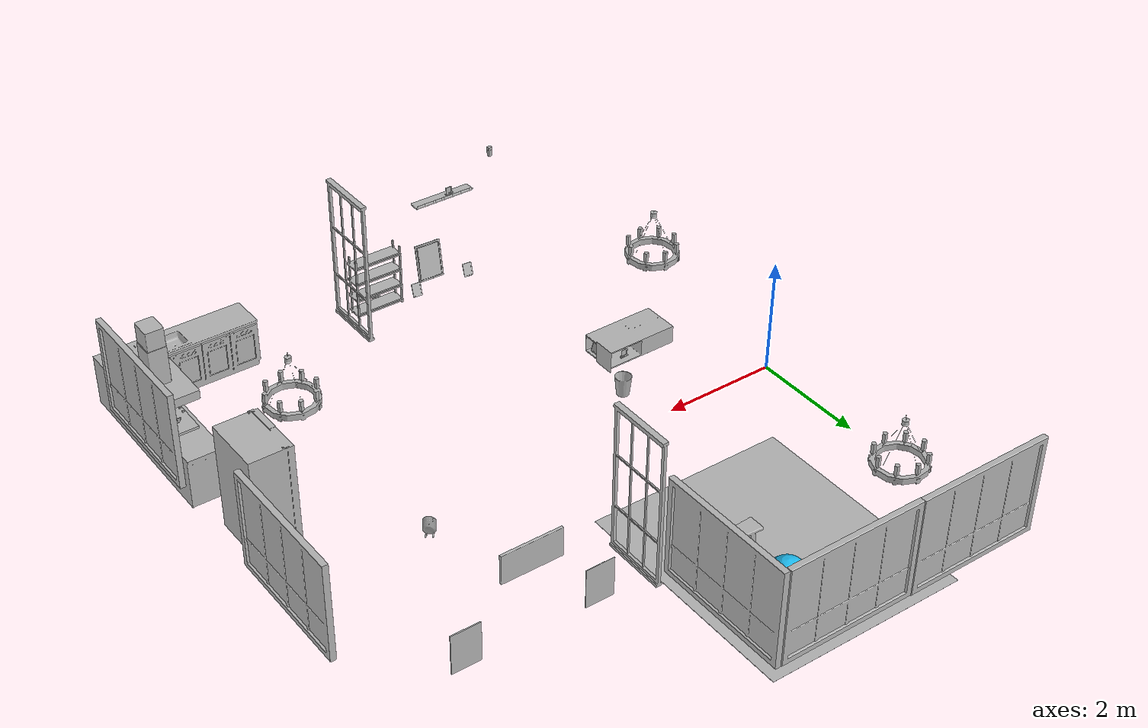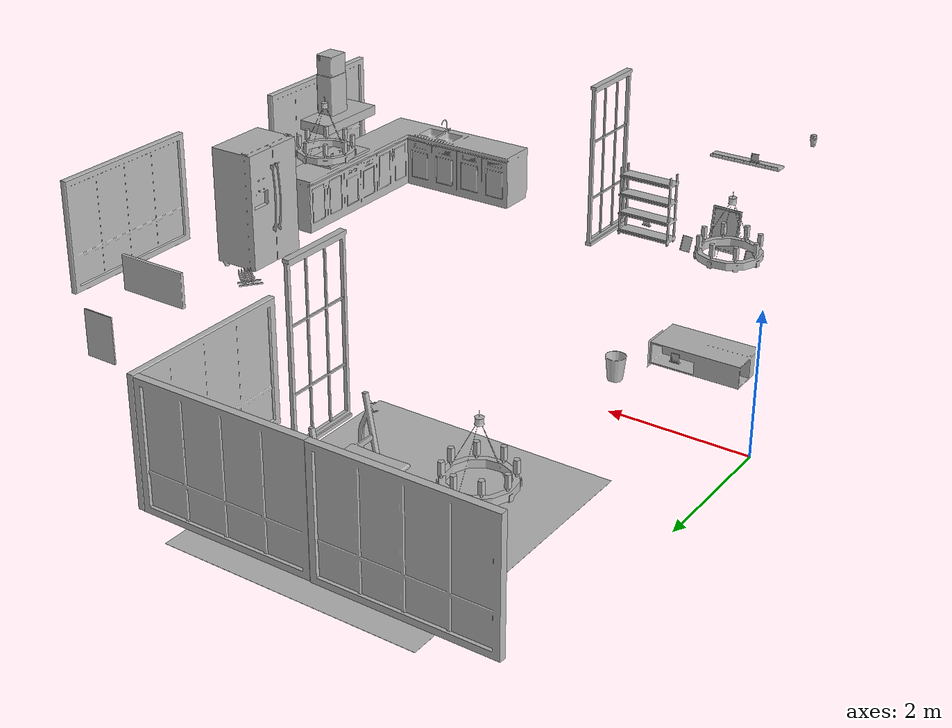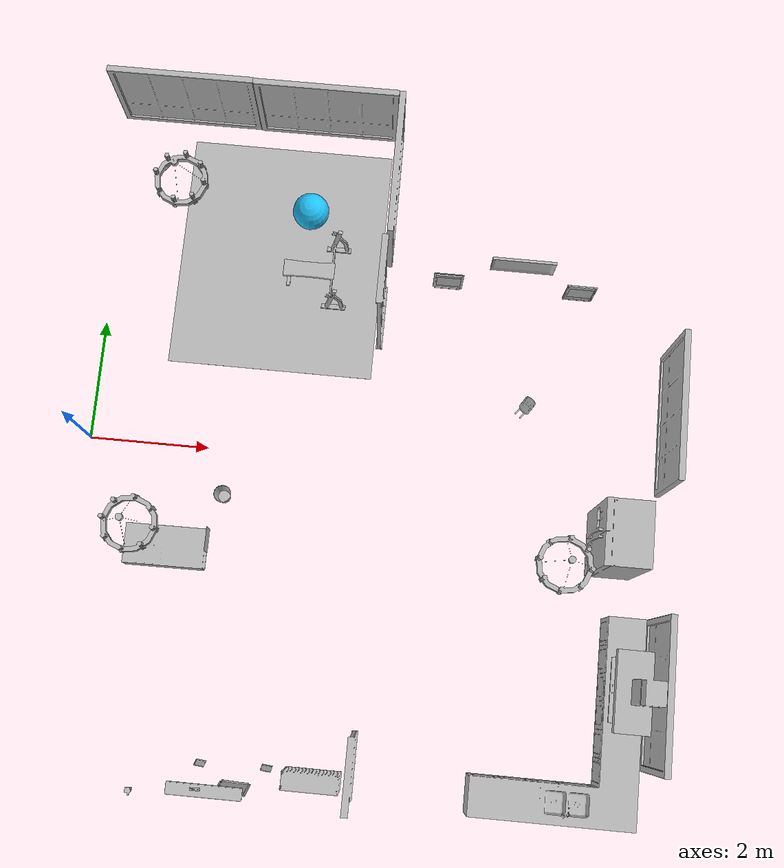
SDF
<sdf version="1.7">
 <world name="default">
  <model name="Ball_01_001">
   <static>1</static>
   <frame name="aws_robomaker_residential_Ball_01::__model__" attached_to="aws_robomaker_residential_Ball_01::link">
    <pose relative_to="__model__">0 0 0 0 -0 0</pose>
   </frame>
   <link name="aws_robomaker_residential_Ball_01::link">
    <inertial>
     <mass>0.12</mass>
     <inertia>
      <ixx>0.030752</ixx>
      <ixy>0</ixy>
      <ixz>0</ixz>
      <iyy>0.030752</iyy>
      <iyz>0</iyz>
      <izz>0.030752</izz>
     </inertia>
    </inertial>
    <collision name="collision">
     <geometry><sphere><radius>0.31</radius></sphere></geometry>
     <surface>
      <friction><ode><mu>0.85</mu><mu2>0.85</mu2></ode></friction>
      <contact><ode><kd>8500</kd><max_vel>5.1</max_vel></ode></contact>
     </surface>
    </collision>
    <visual name="visual">
     <geometry><sphere><radius>0.31</radius></sphere></geometry>
     <material><diffuse>0.12 0.76 0.97 1</diffuse><ambient>0.03 0.21 0.27 1</ambient></material>
     <meta><layer>1</layer></meta>
    </visual>
    <pose relative_to="aws_robomaker_residential_Ball_01::__model__">0 0 0 0 -0 0</pose>
   </link>
   <pose>3.2955 4.22567 0.318684 0 -0 0</pose>
  </model>
  <model name="Board_01_001">
   <static>1</static>
   <frame name="aws_robomaker_residential_Board_01::__model__" attached_to="aws_robomaker_residential_Board_01::link">
    <pose relative_to="__model__">0 0 0 0 -0 0</pose>
   </frame>
   <link name="aws_robomaker_residential_Board_01::link">
    <inertial><mass>1</mass></inertial>
    <collision name="collision">
     <geometry>
      <mesh>
       <uri>model://aws_robomaker_residential_Board_01/meshes/aws_Board_01_collision.DAE</uri>
       <scale>1 1 1</scale>
      </mesh>
     </geometry>
    </collision>
    <visual name="visual">
     <geometry>
      <mesh><uri>model://aws_robomaker_residential_Board_01/meshes/aws_Board_01_visual.DAE</uri></mesh>
     </geometry>
     <meta><layer>2</layer></meta>
    </visual>
    <pose relative_to="aws_robomaker_residential_Board_01::__model__">0 0 0 0 -0 0</pose>
   </link>
   <static>1</static>
   <pose>2.77907 -5.3927 1.53817 0 -0 0</pose>
  </model>
  <model name="Chandelier_01_001">
   <static>1</static>
   <frame name="aws_robomaker_residential_Chandelier_01::__model__" attached_to="aws_robomaker_residential_Chandelier_01::link">
    <pose relative_to="__model__">0 0 0 0 -0 0</pose>
   </frame>
   <link name="aws_robomaker_residential_Chandelier_01::link">
    <inertial><mass>1</mass></inertial>
    <collision name="collision">
     <geometry>
      <mesh>
       <uri>model://aws_robomaker_residential_Chandelier_01/meshes/aws_Chandelier_01_collision.DAE</uri>
       <scale>1 1 1</scale>
      </mesh>
     </geometry>
    </collision>
    <visual name="visual">
     <geometry>
      <mesh><uri>model://aws_robomaker_residential_Chandelier_01/meshes/aws_Chandelier_01_visual.DAE</uri></mesh>
     </geometry>
     <meta><layer>2</layer></meta>
    </visual>
    <pose relative_to="aws_robomaker_residential_Chandelier_01::__model__">0 0 0 0 -0 0</pose>
   </link>
   <static>1</static>
   <pose>1.22106 4.15574 1.295 0 -0 0</pose>
  </model>
  <model name="Chandelier_01_003">
   <static>1</static>
   <frame name="aws_robomaker_residential_Chandelier_01::__model__" attached_to="aws_robomaker_residential_Chandelier_01::link">
    <pose relative_to="__model__">0 0 0 0 -0 0</pose>
   </frame>
   <link name="aws_robomaker_residential_Chandelier_01::link">
    <inertial><mass>1</mass></inertial>
    <collision name="collision">
     <geometry>
      <mesh>
       <uri>model://aws_robomaker_residential_Chandelier_01/meshes/aws_Chandelier_01_collision.DAE</uri>
       <scale>1 1 1</scale>
      </mesh>
     </geometry>
    </collision>
    <visual name="visual">
     <geometry>
      <mesh><uri>model://aws_robomaker_residential_Chandelier_01/meshes/aws_Chandelier_01_visual.DAE</uri></mesh>
     </geometry>
     <meta><layer>2</layer></meta>
    </visual>
    <pose relative_to="aws_robomaker_residential_Chandelier_01::__model__">0 0 0 0 -0 0</pose>
   </link>
   <static>1</static>
   <pose>7.82406 -1.59 1.751 0 -0 0</pose>
  </model>
  <model name="Chandelier_01_004">
   <static>1</static>
   <frame name="aws_robomaker_residential_Chandelier_01::__model__" attached_to="aws_robomaker_residential_Chandelier_01::link">
    <pose relative_to="__model__">0 0 0 0 -0 0</pose>
   </frame>
   <link name="aws_robomaker_residential_Chandelier_01::link">
    <inertial><mass>1</mass></inertial>
    <collision name="collision">
     <geometry>
      <mesh>
       <uri>model://aws_robomaker_residential_Chandelier_01/meshes/aws_Chandelier_01_collision.DAE</uri>
       <scale>1 1 1</scale>
      </mesh>
     </geometry>
    </collision>
    <visual name="visual">
     <geometry>
      <mesh><uri>model://aws_robomaker_residential_Chandelier_01/meshes/aws_Chandelier_01_visual.DAE</uri></mesh>
     </geometry>
     <meta><layer>2</layer></meta>
    </visual>
    <pose relative_to="aws_robomaker_residential_Chandelier_01::__model__">0 0 0 0 -0 0</pose>
   </link>
   <static>1</static>
   <pose>1.22106 -1.59204 1.7873 0 -0 0</pose>
  </model>
  <model name="Carpet_01_002">
   <static>1</static>
   <frame name="aws_robomaker_residential_Carpet_01::__model__" attached_to="aws_robomaker_residential_Carpet_01::link">
    <pose relative_to="__model__">0 0 0 0 -0 0</pose>
   </frame>
   <link name="aws_robomaker_residential_Carpet_01::link">
    <inertial><mass>8.1</mass></inertial>
    <collision name="collision">
     <geometry>
      <mesh>
       <uri>model://aws_robomaker_residential_Carpet_01/meshes/aws_Carpet_01_collision.DAE</uri>
       <scale>1 1 0.95</scale>
      </mesh>
     </geometry>
     <surface><friction><ode><mu>100</mu><mu2>50</mu2></ode></friction></surface>
     <pose>0 0 -0.01 0 -0 0</pose>
    </collision>
    <visual name="visual">
     <geometry>
      <mesh><uri>model://aws_robomaker_residential_Carpet_01/meshes/aws_Carpet_01_visual.DAE</uri></mesh>
     </geometry>
     <meta><layer>1</layer></meta>
    </visual>
    <pose relative_to="aws_robomaker_residential_Carpet_01::__model__">0 0 0 0 -0 0</pose>
   </link>
   <static>1</static>
   <pose>2.85405 3.45 0.000585 0 -0 0</pose>
  </model>
  <model name="CoffeeTable_01_001">
   <static>1</static>
   <frame name="aws_robomaker_residential_CoffeeTable_01::__model__" attached_to="aws_robomaker_residential_CoffeeTable_01::link">
    <pose relative_to="__model__">0 0 0 0 -0 0</pose>
   </frame>
   <link name="aws_robomaker_residential_CoffeeTable_01::link">
    <inertial>
     <mass>21.7</mass>
     <inertia><ixx>0.81375</ixx><ixy>0</ixy><ixz>0</ixz><iyy>2.76675</iyy><iyz>0</iyz><izz>3.254</izz></inertia>
    </inertial>
    <collision name="collision">
     <geometry>
      <mesh>
       <uri>model://aws_robomaker_residential_CoffeeTable_01/meshes/aws_CoffeeTable_01_collision.DAE</uri>
       <scale>1 1 1</scale>
      </mesh>
     </geometry>
     <surface><contact><ode><max_vel>0.01</max_vel></ode></contact></surface>
    </collision>
    <visual name="visual">
     <geometry>
      <mesh><uri>model://aws_robomaker_residential_CoffeeTable_01/meshes/aws_CoffeeTable_01_visual.DAE</uri></mesh>
     </geometry>
     <meta><layer>1</layer></meta>
    </visual>
    <pose relative_to="aws_robomaker_residential_CoffeeTable_01::__model__">0 0 0 0 -0 0</pose>
   </link>
   <static>1</static>
   <pose>1.5123 -1.73344 0.041983 0 -0 0.01</pose>
  </model>
  <model name="CookingBench_01_001">
   <frame name="aws_robomaker_residential_CookingBench_01::__model__" attached_to="aws_robomaker_residential_CookingBench_01::link">
    <pose relative_to="__model__">0 0 0 0 -0 0</pose>
   </frame>
   <link name="aws_robomaker_residential_CookingBench_01::link">
    <inertial><mass>1</mass></inertial>
    <collision name="collision">
     <geometry>
      <mesh>
       <uri>model://aws_robomaker_residential_CookingBench_01/meshes/aws_CookingBench_01_collision.DAE</uri>
       <scale>1 1 1</scale>
      </mesh>
     </geometry>
    </collision>
    <visual name="visual">
     <geometry>
      <mesh>
       <uri>model://aws_robomaker_residential_CookingBench_01/meshes/aws_CookingBench_01_visual.DAE</uri>
      </mesh>
     </geometry>
     <meta><layer>1</layer></meta>
    </visual>
    <pose relative_to="aws_robomaker_residential_CookingBench_01::__model__">0 0 0 0 -0 0</pose>
   </link>
   <pose>9.03838 -3.35114 0.90361 0 -0 3.13713</pose>
   <static>1</static>
  </model>
  <model name="FitnessEquipment_01_001">
   <static>1</static>
   <frame name="aws_robomaker_residential_FitnessEquipment_01::__model__" attached_to="aws_robomaker_residential_FitnessEquipment_01::link">
    <pose relative_to="__model__">0 0 0 0 -0 0</pose>
   </frame>
   <link name="aws_robomaker_residential_FitnessEquipment_01::link">
    <inertial><mass>80</mass></inertial>
    <collision name="collision">
     <geometry>
      <mesh>
       <uri>model://aws_robomaker_residential_FitnessEquipment_01/meshes/aws_FitnessEquipment_01_collision.DAE</uri>
       <scale>1 1 1</scale>
      </mesh>
     </geometry>
    </collision>
    <visual name="visual">
     <geometry>
      <mesh>
       <uri>model://aws_robomaker_residential_FitnessEquipment_01/meshes/aws_FitnessEquipment_01_visual.DAE</uri>
      </mesh>
     </geometry>
     <meta><layer>1</layer></meta>
    </visual>
    <pose relative_to="aws_robomaker_residential_FitnessEquipment_01::__model__">0 0 0 0 -0 0</pose>
   </link>
   <static>1</static>
   <pose>3.48472 3.1691 0.003168 0 -0 0</pose>
  </model>
  <model name="FoldingDoor_02_001">
   <static>1</static>
   <frame name="aws_robomaker_residential_FoldingDoor_02::__model__" attached_to="aws_robomaker_residential_FoldingDoor_02::link">
    <pose relative_to="__model__">0 0 0 0 -0 0</pose>
   </frame>
   <link name="aws_robomaker_residential_FoldingDoor_02::link">
    <inertial><mass>1</mass></inertial>
    <collision name="collision">
     <geometry>
      <mesh>
       <uri>model://aws_robomaker_residential_FoldingDoor_02/meshes/aws_FoldingDoor_02_collision.DAE</uri>
       <scale>1 1 1</scale>
      </mesh>
     </geometry>
    </collision>
    <visual name="visual">
     <geometry>
      <mesh><uri>model://aws_robomaker_residential_FoldingDoor_02/meshes/aws_FoldingDoor_02_visual.DAE</uri></mesh>
     </geometry>
     <meta><layer>2</layer></meta>
    </visual>
    <pose relative_to="aws_robomaker_residential_FoldingDoor_02::__model__">0 0 0 0 -0 0</pose>
   </link>
   <static>1</static>
   <pose>4.67423 2.46451 0 0 -0 3.14159</pose>
  </model>
  <model name="FoldingDoor_02_002">
   <static>1</static>
   <frame name="aws_robomaker_residential_FoldingDoor_02::__model__" attached_to="aws_robomaker_residential_FoldingDoor_02::link">
    <pose relative_to="__model__">0 0 0 0 -0 0</pose>
   </frame>
   <link name="aws_robomaker_residential_FoldingDoor_02::link">
    <inertial><mass>1</mass></inertial>
    <collision name="collision">
     <geometry>
      <mesh>
       <uri>model://aws_robomaker_residential_FoldingDoor_02/meshes/aws_FoldingDoor_02_collision.DAE</uri>
       <scale>1 1 1</scale>
      </mesh>
     </geometry>
    </collision>
    <visual name="visual">
     <geometry>
      <mesh><uri>model://aws_robomaker_residential_FoldingDoor_02/meshes/aws_FoldingDoor_02_visual.DAE</uri></mesh>
     </geometry>
     <meta><layer>2</layer></meta>
    </visual>
    <pose relative_to="aws_robomaker_residential_FoldingDoor_02::__model__">0 0 0 0 -0 0</pose>
   </link>
   <static>1</static>
   <pose>4.8912 -4.84968 0 0 -0 0</pose>
  </model>
  <model name="KitchenCabinet_01_001">
   <static>1</static>
   <frame name="aws_robomaker_residential_KitchenCabinet_01::__model__" attached_to="aws_robomaker_residential_KitchenCabinet_01::link">
    <pose relative_to="__model__">0 0 0 0 -0 0</pose>
   </frame>
   <link name="aws_robomaker_residential_KitchenCabinet_01::link">
    <inertial><mass>1</mass></inertial>
    <collision name="collision">
     <geometry>
      <mesh>
       <uri>model://aws_robomaker_residential_KitchenCabinet_01/meshes/aws_KitchenCabinet_01_collision.DAE</uri>
       <scale>1 1 1</scale>
      </mesh>
     </geometry>
    </collision>
    <visual name="visual">
     <geometry>
      <mesh>
       <uri>model://aws_robomaker_residential_KitchenCabinet_01/meshes/aws_KitchenCabinet_01_visual.DAE</uri>
      </mesh>
     </geometry>
     <meta><layer>1</layer></meta>
    </visual>
    <pose relative_to="aws_robomaker_residential_KitchenCabinet_01::__model__">0 0 0 0 -0 0</pose>
   </link>
   <static>1</static>
   <pose>8.00201 -3.83651 0.012068 0 0 -3.14</pose>
  </model>
  <model name="LightC_01_001">
   <static>1</static>
   <frame name="aws_robomaker_residential_LightC_01::__model__" attached_to="aws_robomaker_residential_LightC_01::link">
    <pose relative_to="__model__">0 0 0 0 -0 0</pose>
   </frame>
   <link name="aws_robomaker_residential_LightC_01::link">
    <inertial><mass>1</mass></inertial>
    <collision name="collision">
     <geometry>
      <mesh>
       <uri>model://aws_robomaker_residential_LightC_01/meshes/aws_LightC_01_collision.DAE</uri>
       <scale>1 1 1</scale>
      </mesh>
     </geometry>
    </collision>
    <visual name="visual">
     <geometry>
      <mesh><uri>model://aws_robomaker_residential_LightC_01/meshes/aws_LightC_01_visual.DAE</uri></mesh>
     </geometry>
     <meta><layer>2</layer></meta>
    </visual>
    <pose relative_to="aws_robomaker_residential_LightC_01::__model__">0 0 0 0 -0 0</pose>
   </link>
   <static>1</static>
   <pose>1.76957 -5.44437 2 0 -0 0</pose>
  </model>
  <model name="PortraitB_02">
   <static>1</static>
   <frame name="aws_robomaker_residential_PortraitB_02::__model__" attached_to="aws_robomaker_residential_PortraitB_02::link">
    <pose relative_to="__model__">0 0 0 0 -0 0</pose>
   </frame>
   <link name="aws_robomaker_residential_PortraitB_02::link">
    <inertial><mass>1</mass></inertial>
    <collision name="collision">
     <geometry>
      <mesh>
       <uri>model://aws_robomaker_residential_PortraitB_02/meshes/aws_PortraitB_01_collision.DAE</uri>
       <scale>1 1 1</scale>
      </mesh>
     </geometry>
    </collision>
    <visual name="visual">
     <geometry>
      <mesh><uri>model://aws_robomaker_residential_PortraitB_02/meshes/aws_PortraitB_01_visual.DAE</uri></mesh>
     </geometry>
     <meta><layer>2</layer></meta>
    </visual>
    <pose relative_to="aws_robomaker_residential_PortraitB_02::__model__">0 0 0 0 -0 0</pose>
   </link>
   <static>1</static>
   <pose>5.73702 3.08031 0.3 0 -0 0</pose>
  </model>
  <model name="PortraitB_03">
   <static>1</static>
   <frame name="aws_robomaker_residential_PortraitB_03::__model__" attached_to="aws_robomaker_residential_PortraitB_03::link">
    <pose relative_to="__model__">0 0 0 0 -0 0</pose>
   </frame>
   <link name="aws_robomaker_residential_PortraitB_03::link">
    <inertial><mass>1</mass></inertial>
    <collision name="collision">
     <geometry>
      <mesh>
       <uri>model://aws_robomaker_residential_PortraitB_03/meshes/aws_PortraitB_01_collision.DAE</uri>
       <scale>1 1 1</scale>
      </mesh>
     </geometry>
    </collision>
    <visual name="visual">
     <geometry>
      <mesh><uri>model://aws_robomaker_residential_PortraitB_03/meshes/aws_PortraitB_01_visual.DAE</uri></mesh>
     </geometry>
     <meta><layer>2</layer></meta>
    </visual>
    <pose relative_to="aws_robomaker_residential_PortraitB_03::__model__">0 0 0 0 -0 0</pose>
   </link>
   <static>1</static>
   <pose>3.07138 -5.34937 0.005494 -0.168428 -0 3.10423</pose>
  </model>
  <model name="PortraitA_02">
   <static>1</static>
   <frame name="aws_robomaker_residential_PortraitA_02::__model__" attached_to="aws_robomaker_residential_PortraitA_02::link">
    <pose relative_to="__model__">0 0 0 0 -0 0</pose>
   </frame>
   <link name="aws_robomaker_residential_PortraitA_02::link">
    <inertial><mass>1</mass></inertial>
    <collision name="collision">
     <geometry>
      <mesh>
       <uri>model://aws_robomaker_residential_PortraitA_02/meshes/aws_PortraitA_01_collision.DAE</uri>
       <scale>1 1 1</scale>
      </mesh>
     </geometry>
    </collision>
    <visual name="visual">
     <geometry>
      <mesh><uri>model://aws_robomaker_residential_PortraitA_02/meshes/aws_PortraitA_01_visual.DAE</uri></mesh>
     </geometry>
     <meta><layer>2</layer></meta>
    </visual>
    <pose relative_to="aws_robomaker_residential_PortraitA_02::__model__">0 0 0 0 -0 0</pose>
   </link>
   <static>1</static>
   <pose>7.93702 3.08031 0.3 0 -0 3.14</pose>
  </model>
  <model name="PortraitD_02">
   <static>1</static>
   <frame name="aws_robomaker_residential_PortraitD_02::__model__" attached_to="aws_robomaker_residential_PortraitD_02::link">
    <pose relative_to="__model__">0 0 0 0 -0 0</pose>
   </frame>
   <link name="aws_robomaker_residential_PortraitD_02::link">
    <inertial><mass>1.5</mass></inertial>
    <collision name="collision">
     <geometry>
      <mesh>
       <uri>model://aws_robomaker_residential_PortraitD_02/meshes/aws_PortraitD_01_collision.DAE</uri>
       <scale>1 1 1</scale>
      </mesh>
     </geometry>
    </collision>
    <visual name="visual">
     <geometry>
      <mesh><uri>model://aws_robomaker_residential_PortraitD_02/meshes/aws_PortraitD_01_visual.DAE</uri></mesh>
     </geometry>
     <meta><layer>2</layer></meta>
    </visual>
    <pose relative_to="aws_robomaker_residential_PortraitD_02::__model__">0 0 0 0 -0 0</pose>
   </link>
   <static>1</static>
   <pose>6.87018 3.08031 1.48844 0 -0 0</pose>
  </model>
  <model name="DeskPortraitA_02">
   <static>1</static>
   <frame name="aws_robomaker_residential_DeskPortraitA_02::__model__" attached_to="aws_robomaker_residential_DeskPortraitA_02::link">
    <pose relative_to="__model__">0 0 0 0 -0 0</pose>
   </frame>
   <link name="aws_robomaker_residential_DeskPortraitA_02::link">
    <inertial>
     <mass>1</mass>
     <inertia><ixx>0.0835</ixx><ixy>0</ixy><ixz>0</ixz><iyy>0.16</iyy><iyz>0</iyz><izz>0.08347</izz></inertia>
    </inertial>
    <collision name="collision">
     <geometry>
      <mesh>
       <uri>model://aws_robomaker_residential_DeskPortraitA_02/meshes/aws_DeskPortraitA_01_collision.DAE</uri>
       <scale>1 1 1</scale>
      </mesh>
     </geometry>
    </collision>
    <visual name="visual">
     <geometry>
      <mesh>
       <uri>model://aws_robomaker_residential_DeskPortraitA_02/meshes/aws_DeskPortraitA_01_visual.DAE</uri>
      </mesh>
     </geometry>
     <meta><layer>1</layer></meta>
    </visual>
    <pose relative_to="aws_robomaker_residential_DeskPortraitA_02::__model__">0 0 0 0 -0 0</pose>
   </link>
   <pose>2.04608 -1.89293 0.070388 -0.018328 -0.000441 1.57622</pose>
  </model>
  <model name="DeskPortraitD_01">
   <static>1</static>
   <frame name="aws_robomaker_residential_DeskPortraitD_01::__model__" attached_to="aws_robomaker_residential_DeskPortraitD_01::link">
    <pose relative_to="__model__">0 0 0 0 -0 0</pose>
   </frame>
   <link name="aws_robomaker_residential_DeskPortraitD_01::link">
    <inertial>
     <mass>0.4</mass>
     <inertia><ixx>0.0616</ixx><ixy>0</ixy><ixz>0</ixz><iyy>0.1313</iyy><iyz>0</iyz><izz>0.0803</izz></inertia>
    </inertial>
    <collision name="collision">
     <geometry>
      <mesh>
       <uri>model://aws_robomaker_residential_DeskPortraitD_01/meshes/aws_DeskPortraitD_01_collision.DAE</uri>
       <scale>1 1 1</scale>
      </mesh>
     </geometry>
     <surface>
      <friction><ode><mu>0.7</mu><mu2>0.7</mu2></ode></friction>
      <contact><ode><kd>28500</kd></ode></contact>
     </surface>
    </collision>
    <visual name="visual">
     <geometry>
      <mesh>
       <uri>model://aws_robomaker_residential_DeskPortraitD_01/meshes/aws_DeskPortraitD_01_visual.DAE</uri>
      </mesh>
     </geometry>
     <meta><layer>1</layer></meta>
    </visual>
    <pose relative_to="aws_robomaker_residential_DeskPortraitD_01::__model__">0 0 0 0 -0 0</pose>
   </link>
   <pose>2.64556 -5.37622 1.57374 0 0 -3.11283</pose>
  </model>
  <model name="DeskPortraitD_03">
   <static>1</static>
   <frame name="aws_robomaker_residential_DeskPortraitD_03::__model__" attached_to="aws_robomaker_residential_DeskPortraitD_03::link">
    <pose relative_to="__model__">0 0 0 0 -0 0</pose>
   </frame>
   <link name="aws_robomaker_residential_DeskPortraitD_03::link">
    <inertial>
     <mass>0.4</mass>
     <inertia><ixx>0.0616</ixx><ixy>0</ixy><ixz>0</ixz><iyy>0.1313</iyy><iyz>0</iyz><izz>0.0803</izz></inertia>
    </inertial>
    <collision name="collision">
     <geometry>
      <mesh>
       <uri>model://aws_robomaker_residential_DeskPortraitD_03/meshes/aws_DeskPortraitD_01_collision.DAE</uri>
       <scale>1 1 1</scale>
      </mesh>
     </geometry>
     <surface>
      <friction><ode><mu>0.7</mu><mu2>0.7</mu2></ode></friction>
      <contact><ode><kd>28500</kd></ode></contact>
     </surface>
    </collision>
    <visual name="visual">
     <geometry>
      <mesh>
       <uri>model://aws_robomaker_residential_DeskPortraitD_03/meshes/aws_DeskPortraitD_01_visual.DAE</uri>
      </mesh>
     </geometry>
     <meta><layer>1</layer></meta>
    </visual>
    <pose relative_to="aws_robomaker_residential_DeskPortraitD_03::__model__">0 0 0 0 -0 0</pose>
   </link>
   <pose>1.82673 -1.46488 0.126208 1e-05 6e-06 -3.11438</pose>
  </model>
  <model name="DeskPortraitD_04">
   <static>1</static>
   <frame name="aws_robomaker_residential_DeskPortraitD_04::__model__" attached_to="aws_robomaker_residential_DeskPortraitD_04::link">
    <pose relative_to="__model__">0 0 0 0 -0 0</pose>
   </frame>
   <link name="aws_robomaker_residential_DeskPortraitD_04::link">
    <inertial>
     <mass>0.4</mass>
     <inertia><ixx>0.0616</ixx><ixy>0</ixy><ixz>0</ixz><iyy>0.1313</iyy><iyz>0</iyz><izz>0.0803</izz></inertia>
    </inertial>
    <collision name="collision">
     <geometry>
      <mesh>
       <uri>model://aws_robomaker_residential_DeskPortraitD_04/meshes/aws_DeskPortraitD_01_collision.DAE</uri>
       <scale>1 1 1</scale>
      </mesh>
     </geometry>
     <surface>
      <friction><ode><mu>0.7</mu><mu2>0.7</mu2></ode></friction>
      <contact><ode><kd>28500</kd></ode></contact>
     </surface>
    </collision>
    <visual name="visual">
     <geometry>
      <mesh>
       <uri>model://aws_robomaker_residential_DeskPortraitD_04/meshes/aws_DeskPortraitD_01_visual.DAE</uri>
      </mesh>
     </geometry>
     <meta><layer>1</layer></meta>
    </visual>
    <pose relative_to="aws_robomaker_residential_DeskPortraitD_04::__model__">0 0 0 0 -0 0</pose>
   </link>
   <pose>4.30213 -5.17657 0.202496 0.007118 -1e-06 3.04668</pose>
  </model>
  <model name="DeskPortraitB_01">
   <static>1</static>
   <frame name="aws_robomaker_residential_DeskPortraitB_01::__model__" attached_to="aws_robomaker_residential_DeskPortraitB_01::link">
    <pose relative_to="__model__">0 0 0 0 -0 0</pose>
   </frame>
   <link name="aws_robomaker_residential_DeskPortraitB_01::link">
    <inertial>
     <mass>1</mass>
     <inertia><ixx>0.0135</ixx><ixy>0</ixy><ixz>0</ixz><iyy>0.02</iyy><iyz>0</iyz><izz>0.01347</izz></inertia>
    </inertial>
    <collision name="collision">
     <geometry>
      <mesh>
       <uri>model://aws_robomaker_residential_DeskPortraitB_01/meshes/aws_DeskPortraitB_01_collision.DAE</uri>
       <scale>1 1 1</scale>
      </mesh>
     </geometry>
    </collision>
    <visual name="visual">
     <geometry>
      <mesh>
       <uri>model://aws_robomaker_residential_DeskPortraitB_01/meshes/aws_DeskPortraitB_01_visual.DAE</uri>
      </mesh>
     </geometry>
     <meta><layer>1</layer></meta>
    </visual>
    <pose relative_to="aws_robomaker_residential_DeskPortraitB_01::__model__">0 0 0 0 -0 0</pose>
   </link>
   <pose>3.54738 -5.0839 -0.01266 -0.336622 -1e-06 3.04674</pose>
  </model>
  <model name="DeskPortraitB_02">
   <static>1</static>
   <frame name="aws_robomaker_residential_DeskPortraitB_02::__model__" attached_to="aws_robomaker_residential_DeskPortraitB_02::link">
    <pose relative_to="__model__">0 0 0 0 -0 0</pose>
   </frame>
   <link name="aws_robomaker_residential_DeskPortraitB_02::link">
    <inertial>
     <mass>1</mass>
     <inertia><ixx>0.0135</ixx><ixy>0</ixy><ixz>0</ixz><iyy>0.02</iyy><iyz>0</iyz><izz>0.01347</izz></inertia>
    </inertial>
    <collision name="collision">
     <geometry>
      <mesh>
       <uri>model://aws_robomaker_residential_DeskPortraitB_02/meshes/aws_DeskPortraitB_01_collision.DAE</uri>
       <scale>1 1 1</scale>
      </mesh>
     </geometry>
    </collision>
    <visual name="visual">
     <geometry>
      <mesh>
       <uri>model://aws_robomaker_residential_DeskPortraitB_02/meshes/aws_DeskPortraitB_01_visual.DAE</uri>
      </mesh>
     </geometry>
     <meta><layer>1</layer></meta>
    </visual>
    <pose relative_to="aws_robomaker_residential_DeskPortraitB_02::__model__">0 0 0 0 -0 0</pose>
   </link>
   <pose>2.48627 -5.10252 -0.01266 -0.336621 0 3.0468</pose>
  </model>
  <model name="Rangehood_01_001">
   <static>1</static>
   <frame name="aws_robomaker_residential_Rangehood_01::__model__" attached_to="aws_robomaker_residential_Rangehood_01::link">
    <pose relative_to="__model__">0 0 0 0 -0 0</pose>
   </frame>
   <link name="aws_robomaker_residential_Rangehood_01::link">
    <inertial><mass>1</mass></inertial>
    <collision name="collision">
     <geometry>
      <mesh>
       <uri>model://aws_robomaker_residential_Rangehood_01/meshes/aws_Rangehood_01_collision.DAE</uri>
       <scale>1 1 1</scale>
      </mesh>
     </geometry>
    </collision>
    <visual name="visual">
     <geometry>
      <mesh><uri>model://aws_robomaker_residential_Rangehood_01/meshes/aws_Rangehood_01_visual.DAE</uri></mesh>
     </geometry>
     <meta><layer>2</layer></meta>
    </visual>
    <pose relative_to="aws_robomaker_residential_Rangehood_01::__model__">0 0 0 0 -0 0</pose>
   </link>
   <static>1</static>
   <pose>9.01979 -3.36994 1.50761 0 -0 0</pose>
  </model>
  <model name="Refrigerator_01_001">
   <static>1</static>
   <frame name="aws_robomaker_residential_Refrigerator_01::__model__" attached_to="aws_robomaker_residential_Refrigerator_01::link">
    <pose relative_to="__model__">0 0 0 0 -0 0</pose>
   </frame>
   <link name="aws_robomaker_residential_Refrigerator_01::link">
    <inertial><mass>1</mass></inertial>
    <collision name="collision">
     <geometry>
      <mesh>
       <uri>model://aws_robomaker_residential_Refrigerator_01/meshes/aws_Refrigerator_01_collision.DAE</uri>
       <scale>1 1 1</scale>
      </mesh>
     </geometry>
    </collision>
    <visual name="visual">
     <geometry>
      <mesh>
       <uri>model://aws_robomaker_residential_Refrigerator_01/meshes/aws_Refrigerator_01_visual.DAE</uri>
      </mesh>
     </geometry>
     <meta><layer>1</layer></meta>
    </visual>
    <pose relative_to="aws_robomaker_residential_Refrigerator_01::__model__">0 0 0 0 -0 0</pose>
   </link>
   <static>1</static>
   <pose>8.70273 -1.03203 0 0 0 -1.5635</pose>
  </model>
  <model name="ShoeRack_01_001">
   <static>1</static>
   <frame name="aws_robomaker_residential_ShoeRack_01::__model__" attached_to="aws_robomaker_residential_ShoeRack_01::link">
    <pose relative_to="__model__">0 0 0 0 -0 0</pose>
   </frame>
   <link name="aws_robomaker_residential_ShoeRack_01::link">
    <inertial>
     <mass>6</mass>
     <inertia>
      <ixx>0.02</ixx>
      <ixy>0</ixy>
      <ixz>0</ixz>
      <iyy>0.04</iyy>
      <iyz>0</iyz>
      <ixx>0.02</ixx>
      <izz>1</izz>
     </inertia>
    </inertial>
    <collision name="collision">
     <geometry>
      <mesh>
       <uri>model://aws_robomaker_residential_ShoeRack_01/meshes/aws_ShoeRack_01_collision.DAE</uri>
       <scale>1 1 1</scale>
      </mesh>
     </geometry>
     <surface>
      <friction><ode><mu>0.2</mu><mu2>0.2</mu2></ode></friction>
      <contact><ode><kd>2500</kd></ode></contact>
     </surface>
    </collision>
    <visual name="visual">
     <geometry>
      <mesh><uri>model://aws_robomaker_residential_ShoeRack_01/meshes/aws_ShoeRack_01_visual.DAE</uri></mesh>
     </geometry>
     <meta><layer>1</layer></meta>
    </visual>
    <pose relative_to="aws_robomaker_residential_ShoeRack_01::__model__">0 0 0 0 -0 0</pose>
   </link>
   <pose>4.29798 -5.17357 0 0 -0 0</pose>
  </model>
  <model name="Tableware_01_001">
   <static>1</static>
   <frame name="aws_robomaker_residential_Tableware_01::__model__" attached_to="aws_robomaker_residential_Tableware_01::link">
    <pose relative_to="__model__">0 0 0 0 -0 0</pose>
   </frame>
   <link name="aws_robomaker_residential_Tableware_01::link">
    <inertial><mass>1</mass></inertial>
    <collision name="collision">
     <geometry>
      <mesh>
       <uri>model://aws_robomaker_residential_Tableware_01/meshes/aws_Tableware_01_collision.DAE</uri>
       <scale>1 1 1</scale>
      </mesh>
     </geometry>
    </collision>
    <visual name="visual">
     <geometry>
      <mesh><uri>model://aws_robomaker_residential_Tableware_01/meshes/aws_Tableware_01_visual.DAE</uri></mesh>
     </geometry>
     <meta><layer>1</layer></meta>
    </visual>
    <pose relative_to="aws_robomaker_residential_Tableware_01::__model__">0 0 0 0 -0 0</pose>
   </link>
   <pose>7.15317 0.982767 0.817812 -0.001238 -0.000976 1.02476</pose>
  </model>
  <model name="Trash_01_001">
   <static>1</static>
   <frame name="aws_robomaker_residential_Trash_01::__model__" attached_to="aws_robomaker_residential_Trash_01::link">
    <pose relative_to="__model__">0 0 0 0 -0 0</pose>
   </frame>
   <link name="aws_robomaker_residential_Trash_01::link">
    <inertial>
     <mass>0.1</mass>
     <inertia><ixy>0</ixy><ixz>0</ixz><iyz>0</iyz><ixx>0.05288</ixx><iyy>0.05288</iyy><izz>0.09132</izz></inertia>
    </inertial>
    <collision name="collision">
     <geometry>
      <mesh>
       <uri>model://aws_robomaker_residential_Trash_01/meshes/aws_Trash_01_collision.DAE</uri>
       <scale>1 1 1</scale>
      </mesh>
     </geometry>
    </collision>
    <visual name="visual">
     <geometry>
      <mesh><uri>model://aws_robomaker_residential_Trash_01/meshes/aws_Trash_01_visual.DAE</uri></mesh>
     </geometry>
     <meta><layer>1</layer></meta>
    </visual>
    <pose relative_to="aws_robomaker_residential_Trash_01::__model__">0 0 0 0 -0 0</pose>
   </link>
   <pose>2.36015 -0.796238 0.011 0 -0 0</pose>
  </model>
  <model name="RoomWindow_01_003">
   <static>1</static>
   <frame name="aws_robomaker_residential_RoomWindow_01::__model__" attached_to="aws_robomaker_residential_RoomWindow_01::link">
    <pose relative_to="__model__">0 0 0 0 -0 0</pose>
   </frame>
   <link name="aws_robomaker_residential_RoomWindow_01::link">
    <inertial><mass>1</mass></inertial>
    <collision name="collision">
     <geometry>
      <mesh>
       <uri>model://aws_robomaker_residential_RoomWindow_01/meshes/aws_RoomWindow_01_collision.DAE</uri>
       <scale>1 1 1</scale>
      </mesh>
     </geometry>
    </collision>
    <visual name="visual">
     <geometry>
      <mesh><uri>model://aws_robomaker_residential_RoomWindow_01/meshes/aws_RoomWindow_01_visual.DAE</uri></mesh>
     </geometry>
     <meta><layer>2</layer></meta>
    </visual>
    <pose relative_to="aws_robomaker_residential_RoomWindow_01::__model__">0 0 0 0 -0 0</pose>
   </link>
   <static>1</static>
   <pose>9.42262 -3.37398 0.502739 0 0 -3.1361</pose>
  </model>
  <model name="RoomWindow_01_004">
   <static>1</static>
   <frame name="aws_robomaker_residential_RoomWindow_01::__model__" attached_to="aws_robomaker_residential_RoomWindow_01::link">
    <pose relative_to="__model__">0 0 0 0 -0 0</pose>
   </frame>
   <link name="aws_robomaker_residential_RoomWindow_01::link">
    <inertial><mass>1</mass></inertial>
    <collision name="collision">
     <geometry>
      <mesh>
       <uri>model://aws_robomaker_residential_RoomWindow_01/meshes/aws_RoomWindow_01_collision.DAE</uri>
       <scale>1 1 1</scale>
      </mesh>
     </geometry>
    </collision>
    <visual name="visual">
     <geometry>
      <mesh><uri>model://aws_robomaker_residential_RoomWindow_01/meshes/aws_RoomWindow_01_visual.DAE</uri></mesh>
     </geometry>
     <meta><layer>2</layer></meta>
    </visual>
    <pose relative_to="aws_robomaker_residential_RoomWindow_01::__model__">0 0 0 0 -0 0</pose>
   </link>
   <static>1</static>
   <pose>9.42256 0.96852 0.496581 0 0 -3.1361</pose>
  </model>
  <model name="RoomWindow_01_005">
   <static>1</static>
   <frame name="aws_robomaker_residential_RoomWindow_01::__model__" attached_to="aws_robomaker_residential_RoomWindow_01::link">
    <pose relative_to="__model__">0 0 0 0 -0 0</pose>
   </frame>
   <link name="aws_robomaker_residential_RoomWindow_01::link">
    <inertial><mass>1</mass></inertial>
    <collision name="collision">
     <geometry>
      <mesh>
       <uri>model://aws_robomaker_residential_RoomWindow_01/meshes/aws_RoomWindow_01_collision.DAE</uri>
       <scale>1 1 1</scale>
      </mesh>
     </geometry>
    </collision>
    <visual name="visual">
     <geometry>
      <mesh><uri>model://aws_robomaker_residential_RoomWindow_01/meshes/aws_RoomWindow_01_visual.DAE</uri></mesh>
     </geometry>
     <meta><layer>2</layer></meta>
    </visual>
    <pose relative_to="aws_robomaker_residential_RoomWindow_01::__model__">0 0 0 0 -0 0</pose>
   </link>
   <static>1</static>
   <pose>4.72232 4.47028 0.502739 0 0 -3.1361</pose>
  </model>
  <model name="RoomWindow_01_006">
   <static>1</static>
   <frame name="aws_robomaker_residential_RoomWindow_01::__model__" attached_to="aws_robomaker_residential_RoomWindow_01::link">
    <pose relative_to="__model__">0 0 0 0 -0 0</pose>
   </frame>
   <link name="aws_robomaker_residential_RoomWindow_01::link">
    <inertial><mass>1</mass></inertial>
    <collision name="collision">
     <geometry>
      <mesh>
       <uri>model://aws_robomaker_residential_RoomWindow_01/meshes/aws_RoomWindow_01_collision.DAE</uri>
       <scale>1 1 1</scale>
      </mesh>
     </geometry>
    </collision>
    <visual name="visual">
     <geometry>
      <mesh><uri>model://aws_robomaker_residential_RoomWindow_01/meshes/aws_RoomWindow_01_visual.DAE</uri></mesh>
     </geometry>
     <meta><layer>2</layer></meta>
    </visual>
    <pose relative_to="aws_robomaker_residential_RoomWindow_01::__model__">0 0 0 0 -0 0</pose>
   </link>
   <static>1</static>
   <pose>3.48852 5.60069 0.502739 0 0 -1.56627</pose>
  </model>
  <model name="RoomWindow_01_007">
   <static>1</static>
   <frame name="aws_robomaker_residential_RoomWindow_01::__model__" attached_to="aws_robomaker_residential_RoomWindow_01::link">
    <pose relative_to="__model__">0 0 0 0 -0 0</pose>
   </frame>
   <link name="aws_robomaker_residential_RoomWindow_01::link">
    <inertial><mass>1</mass></inertial>
    <collision name="collision">
     <geometry>
      <mesh>
       <uri>model://aws_robomaker_residential_RoomWindow_01/meshes/aws_RoomWindow_01_collision.DAE</uri>
       <scale>1 1 1</scale>
      </mesh>
     </geometry>
    </collision>
    <visual name="visual">
     <geometry>
      <mesh><uri>model://aws_robomaker_residential_RoomWindow_01/meshes/aws_RoomWindow_01_visual.DAE</uri></mesh>
     </geometry>
     <meta><layer>2</layer></meta>
    </visual>
    <pose relative_to="aws_robomaker_residential_RoomWindow_01::__model__">0 0 0 0 -0 0</pose>
   </link>
   <static>1</static>
   <pose>1.14095 5.60069 0.502739 0 0 -1.56627</pose>
  </model>
  <model name="marker_04">
   <link name="link_3">
    <inertial>
     <mass>1</mass>
     <inertia>
      <ixx>0.166667</ixx>
      <ixy>0</ixy>
      <ixz>0</ixz>
      <iyy>0.166667</iyy>
      <iyz>0</iyz>
      <izz>0.166667</izz>
     </inertia>
    </inertial>
    <pose>0 0 4e-06 0 -0 0</pose>
    <self_collide>1</self_collide>
    <kinematic>1</kinematic>
    <gravity>0</gravity>
    <visual name="visual">
     <geometry><mesh><uri>model://markers/4.dae</uri><scale>0.2 0.2 0.2</scale></mesh></geometry>
     <material><shader type="pixel"><normal_map>__default__</normal_map></shader></material>
    </visual>
    <collision name="collision">
     <geometry><mesh><uri>model://markers/4.dae</uri><scale>0.2 0.2 0.2</scale></mesh></geometry>
     <surface>
      <friction>
       <ode><mu>1</mu><mu2>1</mu2><fdir1>0 0 0</fdir1><slip1>0</slip1><slip2>0</slip2></ode>
       <torsional>
        <coefficient>1</coefficient>
        <patch_radius>0</patch_radius>
        <surface_radius>0</surface_radius>
        <use_patch_radius>1</use_patch_radius>
        <ode><slip>0</slip></ode>
       </torsional>
      </friction>
      <bounce><restitution_coefficient>0</restitution_coefficient><threshold>1e+06</threshold></bounce>
      <contact>
       <collide_without_contact>0</collide_without_contact>
       <collide_without_contact_bitmask>1</collide_without_contact_bitmask>
       <collide_bitmask>1</collide_bitmask>
       <ode>
        <soft_cfm>0</soft_cfm>
        <soft_erp>0.2</soft_erp>
        <kp>1e+13</kp>
        <kd>1</kd>
        <max_vel>0.01</max_vel>
        <min_depth>0</min_depth>
       </ode>
       <bullet>
        <split_impulse>1</split_impulse>
        <split_impulse_penetration_threshold>-0.01</split_impulse_penetration_threshold>
        <soft_cfm>0</soft_cfm>
        <soft_erp>0.2</soft_erp>
        <kp>1e+13</kp>
        <kd>1</kd>
       </bullet>
      </contact>
     </surface>
    </collision>
   </link>
   <static>0</static>
   <pose>2.17752 -1.55567 0.194513 0 -0 0</pose>
  </model>
  <model name="marker_06">
   <link name="link_3">
    <inertial>
     <mass>1</mass>
     <inertia>
      <ixx>0.166667</ixx>
      <ixy>0</ixy>
      <ixz>0</ixz>
      <iyy>0.166667</iyy>
      <iyz>0</iyz>
      <izz>0.166667</izz>
     </inertia>
    </inertial>
    <pose>0 0 4e-06 0 -0 0</pose>
    <self_collide>1</self_collide>
    <kinematic>1</kinematic>
    <gravity>0</gravity>
    <visual name="visual">
     <geometry><mesh><uri>model://markers/6.dae</uri><scale>0.2 0.2 0.2</scale></mesh></geometry>
     <material><shader type="pixel"><normal_map>__default__</normal_map></shader></material>
    </visual>
    <collision name="collision">
     <geometry><mesh><uri>model://markers/6.dae</uri><scale>0.2 0.2 0.2</scale></mesh></geometry>
     <surface>
      <friction>
       <ode><mu>1</mu><mu2>1</mu2><fdir1>0 0 0</fdir1><slip1>0</slip1><slip2>0</slip2></ode>
       <torsional>
        <coefficient>1</coefficient>
        <patch_radius>0</patch_radius>
        <surface_radius>0</surface_radius>
        <use_patch_radius>1</use_patch_radius>
        <ode><slip>0</slip></ode>
       </torsional>
      </friction>
      <bounce><restitution_coefficient>0</restitution_coefficient><threshold>1e+06</threshold></bounce>
      <contact>
       <collide_without_contact>0</collide_without_contact>
       <collide_without_contact_bitmask>1</collide_without_contact_bitmask>
       <collide_bitmask>1</collide_bitmask>
       <ode>
        <soft_cfm>0</soft_cfm>
        <soft_erp>0.2</soft_erp>
        <kp>1e+13</kp>
        <kd>1</kd>
        <max_vel>0.01</max_vel>
        <min_depth>0</min_depth>
       </ode>
       <bullet>
        <split_impulse>1</split_impulse>
        <split_impulse_penetration_threshold>-0.01</split_impulse_penetration_threshold>
        <soft_cfm>0</soft_cfm>
        <soft_erp>0.2</soft_erp>
        <kp>1e+13</kp>
        <kd>1</kd>
       </bullet>
      </contact>
     </surface>
    </collision>
   </link>
   <static>0</static>
   <pose>5.74559 3.07951 0.631727 0 0 -1.57</pose>
  </model>
  <model name="marker_07">
   <link name="link_3">
    <inertial>
     <mass>1</mass>
     <inertia>
      <ixx>0.166667</ixx>
      <ixy>0</ixy>
      <ixz>0</ixz>
      <iyy>0.166667</iyy>
      <iyz>0</iyz>
      <izz>0.166667</izz>
     </inertia>
    </inertial>
    <pose>0 0 4e-06 0 -0 0</pose>
    <self_collide>1</self_collide>
    <kinematic>1</kinematic>
    <gravity>0</gravity>
    <visual name="visual">
     <geometry><mesh><uri>model://markers/7.dae</uri><scale>0.2 0.2 0.2</scale></mesh></geometry>
     <material><shader type="pixel"><normal_map>__default__</normal_map></shader></material>
    </visual>
    <collision name="collision">
     <geometry><mesh><uri>model://markers/7.dae</uri><scale>0.2 0.2 0.2</scale></mesh></geometry>
     <surface>
      <friction>
       <ode><mu>1</mu><mu2>1</mu2><fdir1>0 0 0</fdir1><slip1>0</slip1><slip2>0</slip2></ode>
       <torsional>
        <coefficient>1</coefficient>
        <patch_radius>0</patch_radius>
        <surface_radius>0</surface_radius>
        <use_patch_radius>1</use_patch_radius>
        <ode><slip>0</slip></ode>
       </torsional>
      </friction>
      <bounce><restitution_coefficient>0</restitution_coefficient><threshold>1e+06</threshold></bounce>
      <contact>
       <collide_without_contact>0</collide_without_contact>
       <collide_without_contact_bitmask>1</collide_without_contact_bitmask>
       <collide_bitmask>1</collide_bitmask>
       <ode>
        <soft_cfm>0</soft_cfm>
        <soft_erp>0.2</soft_erp>
        <kp>1e+13</kp>
        <kd>1</kd>
        <max_vel>0.01</max_vel>
        <min_depth>0</min_depth>
       </ode>
       <bullet>
        <split_impulse>1</split_impulse>
        <split_impulse_penetration_threshold>-0.01</split_impulse_penetration_threshold>
        <soft_cfm>0</soft_cfm>
        <soft_erp>0.2</soft_erp>
        <kp>1e+13</kp>
        <kd>1</kd>
       </bullet>
      </contact>
     </surface>
    </collision>
   </link>
   <static>0</static>
   <pose>7.94683 3.07665 0.648801 0 0 -1.57</pose>
  </model>
 </world>
</sdf>
